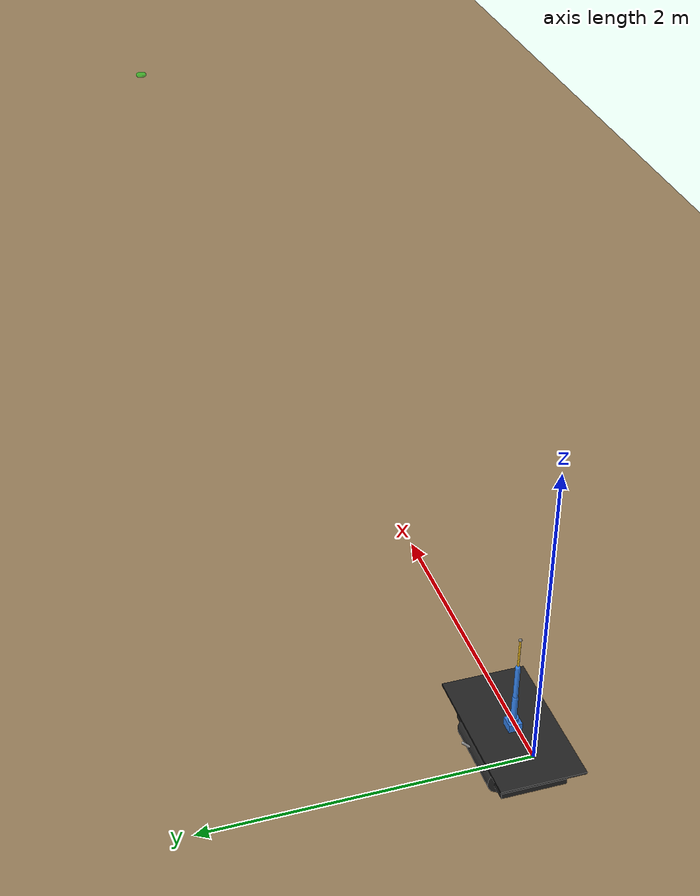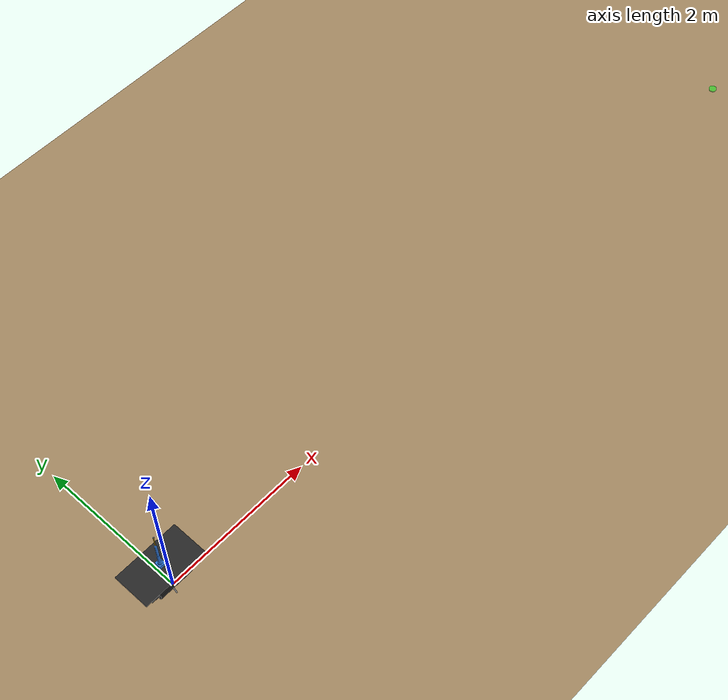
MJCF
<mujoco model="archimedes_survey">

  <compiler angle="radian" />

  <option integrator="Euler" timestep="0.002"
          iterations="100" solver="Newton"
          tolerance="1e-9"
          gravity="0 0 -9.81"
          density="1200"
          viscosity="0.02" />

  <!-- ================================================================
       Defaults
  ================================================================ -->
  <default>
    <default class="screw">
      <joint type="hinge" axis="1 0 0" damping="2.0" armature="0.05" />
      <!-- High friction to simulate screw-soil interaction -->
      <geom condim="6" contype="1" conaffinity="1"
            friction="3.0 0.8 0.8"
            solref="0.02 1.5" solimp="0.95 0.99 0.001" />
    </default>
    <default class="arm_joint">
      <joint damping="0.3" armature="0.01" />
      <geom condim="3" contype="2" conaffinity="2"
            friction="0.5 0.1 0.1" />
    </default>
    <default class="chassis">
      <geom condim="3" contype="1" conaffinity="1"
            friction="0.4 0.1 0.1" />
    </default>
  </default>

  <!-- ================================================================
       Assets / Materials
  ================================================================ -->
  <asset>
    <texture name="terrain_tex" type="2d" builtin="checker"
             rgb1=".55 .45 .3" rgb2=".7 .6 .45"
             width="128" height="128" />
    <material name="terrain_mat" texture="terrain_tex"
              texrepeat="6 6" texuniform="true" reflectance="0.1" />
    <material name="chassis_mat" rgba="0.15 0.15 0.15 1" />
    <material name="screw_mat"   rgba="0.7  0.7  0.7  1" />
    <material name="arm_mat"     rgba="0.2  0.5  0.9  1" />
    <material name="probe_mat"   rgba="0.9  0.7  0.1  1" />
    <material name="target_mat"  rgba="0.1  0.9  0.1  0.6" />
  </asset>

  <!-- ================================================================
       World
  ================================================================ -->
  <worldbody>
    <light directional="true" ambient=".35 .35 .35"
           pos="20 20 40" dir="-0.3 -0.5 -1" />

    <!-- Terrain floor — friction changed via code to simulate mud/sand -->
    <geom name="floor" type="plane" size="50 50 0.1"
          material="terrain_mat"
          condim="6" contype="1" conaffinity="1"
          friction="1.5 0.5 0.5"
          solref="0.02 1.5" solimp="0.9 0.95 0.001" />

    <!-- Burrow target marker (position set via code) -->
    <body name="target_body" pos="10 0 0">
      <geom name="target_geom" type="cylinder" size="0.05 0.01"
            material="target_mat"
            contype="0" conaffinity="0" />
    </body>

    <body name="mobile_base" pos="0 0 0.12">
      <freejoint name="base_free" />

      <!-- Chassis / platform plate -->
      <geom name="chassis_plate" type="box"
            size="0.439 0.254 0.006"
            pos="0 0.150 0.150"
            material="chassis_mat" class="chassis"
            mass="2.0" />

      <!-- Motor bracket H-frames (front + rear, simplified) -->
      <geom name="bracket_front" type="box" size="0.050 0.195 0.080"
            pos="-0.280 0.150 0.060"
            material="chassis_mat" class="chassis" mass="0.5" />
      <geom name="bracket_rear" type="box" size="0.050 0.195 0.080"
            pos=" 0.280 0.150 0.060"
            material="chassis_mat" class="chassis" mass="0.5" />

      <!-- ---- SCREW A (Y = 0) ---- -->
      <body name="screw_a" pos="0 0 0">
        <!-- PVC pipe tube (static, part of chassis) -->
        <geom name="pipe_a" type="cylinder" size="0.084 0.225"
              quat="0.707 0 0.707 0"
              material="chassis_mat" class="chassis" mass="1.5" />
        <!-- Rotating helix (approximated as 4 angled vane cylinders) -->
        <joint name="joint_screw_a" class="screw" />
        <geom name="helix_a0" type="capsule" size="0.008 0.090"
              pos="0.050 0.060 0" quat="0.924 0.383 0 0"
              material="screw_mat" class="screw" mass="0.1" />
        <geom name="helix_a1" type="capsule" size="0.008 0.090"
              pos="-0.050 0.000 0.060" quat="0.924 0 0.383 0"
              material="screw_mat" class="screw" mass="0.1" />
        <geom name="helix_a2" type="capsule" size="0.008 0.090"
              pos="-0.050 -0.060 0" quat="0.924 -0.383 0 0"
              material="screw_mat" class="screw" mass="0.1" />
        <geom name="helix_a3" type="capsule" size="0.008 0.090"
              pos="0.050 0.000 -0.060" quat="0.924 0 -0.383 0"
              material="screw_mat" class="screw" mass="0.1" />
      </body>

      <!-- ---- SCREW B (Y = +0.300 m) ---- -->
      <body name="screw_b" pos="0 0.300 0">
        <geom name="pipe_b" type="cylinder" size="0.084 0.225"
              quat="0.707 0 0.707 0"
              material="chassis_mat" class="chassis" mass="1.5" />
        <!-- Mirrored helix (opposite handedness → counter-rotation) -->
        <joint name="joint_screw_b" class="screw" />
        <geom name="helix_b0" type="capsule" size="0.008 0.090"
              pos="0.050 0.060 0" quat="0.924 -0.383 0 0"
              material="screw_mat" class="screw" mass="0.1" />
        <geom name="helix_b1" type="capsule" size="0.008 0.090"
              pos="-0.050 0.000 0.060" quat="0.924 0 -0.383 0"
              material="screw_mat" class="screw" mass="0.1" />
        <geom name="helix_b2" type="capsule" size="0.008 0.090"
              pos="-0.050 -0.060 0" quat="0.924 0.383 0 0"
              material="screw_mat" class="screw" mass="0.1" />
        <geom name="helix_b3" type="capsule" size="0.008 0.090"
              pos="0.050 0.000 -0.060" quat="0.924 0 0.383 0"
              material="screw_mat" class="screw" mass="0.1" />
      </body>

      <body name="arm_base_mount" pos="0 0.150 0.162">
        <geom name="arm_base_geom" type="box" size="0.040 0.040 0.044"
              material="arm_mat" class="arm_joint" mass="0.3" />

        <!-- J1: Yaw (about Z-axis) ±60° -->
        <body name="arm_turret" pos="0 0 0.044">
          <joint name="arm_j1" type="hinge" axis="0 0 1"
                 range="-1.047 1.047" class="arm_joint"
                 damping="0.5" armature="0.02" />
          <geom name="turret_geom" type="cylinder" size="0.030 0.025"
                material="arm_mat" class="arm_joint" mass="0.15" />

          <!-- J2: Shoulder (about Y-axis) 0-120° -->
          <body name="arm_upper" pos="0 0 0.025">
            <joint name="arm_j2" type="hinge" axis="0 1 0"
                   range="0 2.094" class="arm_joint"
                   damping="0.8" armature="0.03" />
            <geom name="upper_arm_geom" type="capsule" size="0.018 0.073"
                  pos="0 0 0.073"
                  material="arm_mat" class="arm_joint" mass="0.2" />

            <!-- J3: Elbow (about Y-axis) 0-135° -->
            <body name="arm_forearm" pos="0 0 0.146">
              <joint name="arm_j3" type="hinge" axis="0 1 0"
                     range="0 2.356" class="arm_joint"
                     damping="0.5" armature="0.02" />
              <geom name="forearm_geom" type="capsule" size="0.015 0.110"
                    pos="0 0 0.110"
                    material="arm_mat" class="arm_joint" mass="0.15" />

              <!-- Probe tip -->
              <body name="probe_tip" pos="0 0 0.220">
                <geom name="probe_geom" type="capsule" size="0.006 0.100"
                      pos="0 0 0.100"
                      material="probe_mat" class="arm_joint" mass="0.05" />
                <site name="ee_site" pos="0 0 0.200" size="0.01" />
              </body>
            </body>
          </body>
        </body>
      </body>

    </body><!-- /mobile_base -->

  </worldbody>

  <!-- ================================================================
       Sensors
  ================================================================ -->
  <sensor>
    <framepos  name="base_pos"   objtype="body" objname="mobile_base" />
    <framequat name="base_quat"  objtype="body" objname="mobile_base" />
    <framelinvel  name="base_vel"  objtype="body" objname="mobile_base" />
    <frameangvel  name="base_angvel" objtype="body" objname="mobile_base" />
    <framepos  name="ee_pos"    objtype="site" objname="ee_site" />
    <framelinvel  name="ee_vel"  objtype="site" objname="ee_site" />
    <jointpos  name="j1_pos"  joint="arm_j1" />
    <jointpos  name="j2_pos"  joint="arm_j2" />
    <jointpos  name="j3_pos"  joint="arm_j3" />
    <jointvel  name="j1_vel"  joint="arm_j1" />
    <jointvel  name="j2_vel"  joint="arm_j2" />
    <jointvel  name="j3_vel"  joint="arm_j3" />
    <jointvel  name="sa_vel"  joint="joint_screw_a" />
    <jointvel  name="sb_vel"  joint="joint_screw_b" />
  </sensor>

  <actuator>
    <motor name="screw_a"  joint="joint_screw_a" gear="10"
           forcerange="-30 30" />
    <motor name="screw_b"  joint="joint_screw_b" gear="10"
           forcerange="-30 30" />
    <motor name="arm_j1"   joint="arm_j1"  gear="1"
           forcerange="-1.27 1.27" />
    <motor name="arm_j2"   joint="arm_j2"  gear="1"
           forcerange="-1.96 1.96" />
    <motor name="arm_j3"   joint="arm_j3"  gear="1"
           forcerange="-1.27 1.27" />
  </actuator>

</mujoco>
